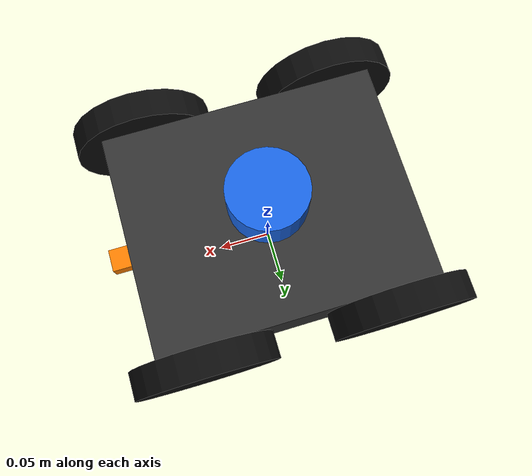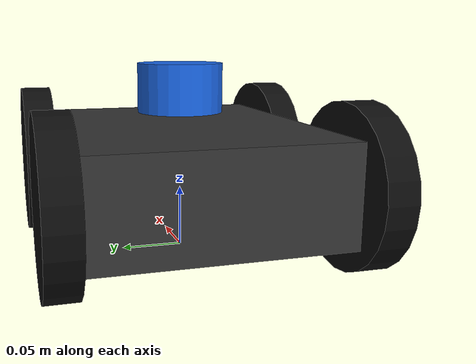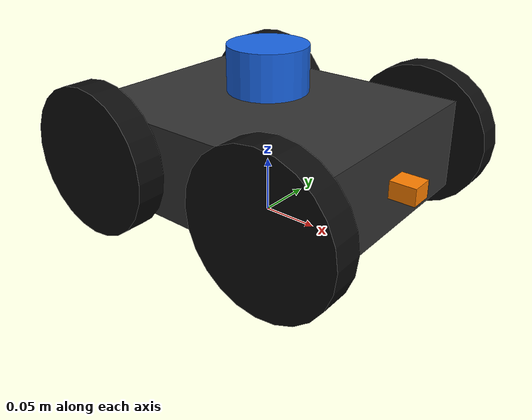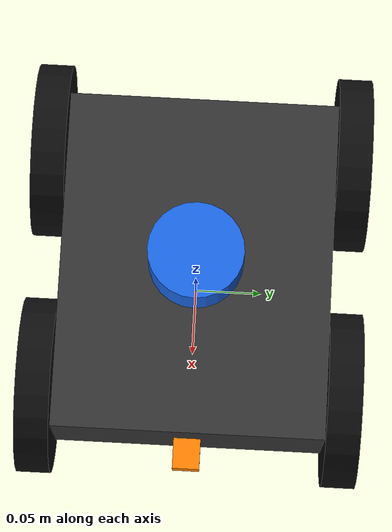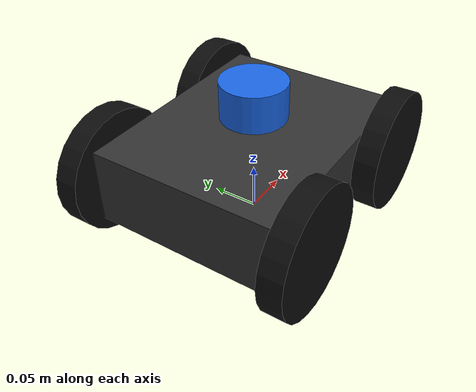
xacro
<?xml version="1.0"?>
<robot name="swarmx_robot" xmlns:xacro="http://www.ros.org/wiki/xacro">

  <!--  MATERIALS                                                  -->
  <material name="dark_grey">
    <color rgba="0.2 0.2 0.2 1.0"/>
  </material>
  <material name="orange">
    <color rgba="1.0 0.5 0.0 1.0"/>
  </material>
  <material name="blue">
    <color rgba="0.1 0.4 0.9 1.0"/>
  </material>
  <material name="black">
    <color rgba="0.05 0.05 0.05 1.0"/>
  </material>

  <!--  BASE FOOTPRINT (ground-level origin)                       -->
  <link name="base_footprint"/>

  <joint name="base_footprint_joint" type="fixed">
    <parent link="base_footprint"/>
    <child  link="base_link"/>
    <!-- base_link is 8cm above ground (wheel radius = 6.5 cm, body z = body/2) -->
    <origin xyz="0 0 0.065" rpy="0 0 0"/>
  </joint>

  <!--  MAIN BODY                                                  -->
  <link name="base_link">
    <visual>
      <origin xyz="0 0 0" rpy="0 0 0"/>
      <geometry>
        <box size="0.25 0.20 0.08"/>
      </geometry>
      <material name="dark_grey"/>
    </visual>
    <collision>
      <origin xyz="0 0 0" rpy="0 0 0"/>
      <geometry>
        <box size="0.25 0.20 0.08"/>
      </geometry>
    </collision>
    <inertial>
      <mass value="1.5"/>
      <!-- Solid box inertia: m/12*(y²+z²), m/12*(x²+z²), m/12*(x²+y²) -->
      <inertia ixx="0.0053" ixy="0" ixz="0"
               iyy="0.0088" iyz="0"
               izz="0.0120"/>
    </inertial>
  </link>

  <!--  WHEELS  (left-front, right-front, left-rear, right-rear)  -->

  <!-- Wheel macro -->
  <xacro:macro name="wheel" params="name x_pos y_pos">

    <link name="${name}_link">
      <visual>
        <origin xyz="0 0 0" rpy="${pi/2} 0 0"/>
        <geometry>
          <cylinder radius="0.065" length="0.025"/>
        </geometry>
        <material name="black"/>
      </visual>
      <collision>
        <origin xyz="0 0 0" rpy="${pi/2} 0 0"/>
        <geometry>
          <cylinder radius="0.065" length="0.025"/>
        </geometry>
      </collision>
      <inertial>
        <mass value="0.15"/>
        <!-- Cylinder: ixx=iyy = m(3r²+h²)/12, izz = mr²/2 -->
        <inertia ixx="0.00021" ixy="0" ixz="0"
                 iyy="0.00021" iyz="0"
                 izz="0.00032"/>
      </inertial>
    </link>

    <joint name="${name}_joint" type="continuous">
      <parent link="base_link"/>
      <child  link="${name}_link"/>
      <origin xyz="${x_pos} ${y_pos} -0.0" rpy="0 0 0"/>
      <axis xyz="0 1 0"/>
      <dynamics damping="0.1" friction="0.1"/>
    </joint>

  </xacro:macro>

  <xacro:wheel name="lf_wheel" x_pos=" 0.09" y_pos=" 0.1125"/>
  <xacro:wheel name="rf_wheel" x_pos=" 0.09" y_pos="-0.1125"/>
  <xacro:wheel name="lr_wheel" x_pos="-0.09" y_pos=" 0.1125"/>
  <xacro:wheel name="rr_wheel" x_pos="-0.09" y_pos="-0.1125"/>

  <!--  LIDAR (RPLidar A1/A2)                                     -->
  <link name="laser">
    <visual>
      <origin xyz="0 0 0" rpy="0 0 0"/>
      <geometry>
        <cylinder radius="0.035" length="0.04"/>
      </geometry>
      <material name="blue"/>
    </visual>
    <collision>
      <origin xyz="0 0 0" rpy="0 0 0"/>
      <geometry>
        <cylinder radius="0.035" length="0.04"/>
      </geometry>
    </collision>
    <inertial>
      <mass value="0.18"/>
      <inertia ixx="0.0001" ixy="0" ixz="0"
               iyy="0.0001" iyz="0"
               izz="0.0001"/>
    </inertial>
  </link>

  <joint name="laser_joint" type="fixed">
    <parent link="base_link"/>
    <child  link="laser"/>
    <!-- Top-centre of body, 3 cm above body top surface -->
    <origin xyz="0 0 0.07" rpy="0 0 0"/>
  </joint>

  <!--  HC-SR04 ULTRASONIC                                        -->
  <link name="ultrasonic_link">
    <visual>
      <origin xyz="0 0 0" rpy="0 0 0"/>
      <geometry>
        <box size="0.045 0.020 0.015"/>
      </geometry>
      <material name="orange"/>
    </visual>
    <collision>
      <origin xyz="0 0 0" rpy="0 0 0"/>
      <geometry>
        <box size="0.045 0.020 0.015"/>
      </geometry>
    </collision>
    <inertial>
      <mass value="0.01"/>
      <inertia ixx="0.000001" ixy="0" ixz="0"
               iyy="0.000001" iyz="0"
               izz="0.000001"/>
    </inertial>
  </link>

  <joint name="ultrasonic_joint" type="fixed">
    <parent link="base_link"/>
    <child  link="ultrasonic_link"/>
    <!-- Front face, body centre height -->
    <origin xyz="0.125 0 0" rpy="0 0 0"/>
  </joint>

</robot>
